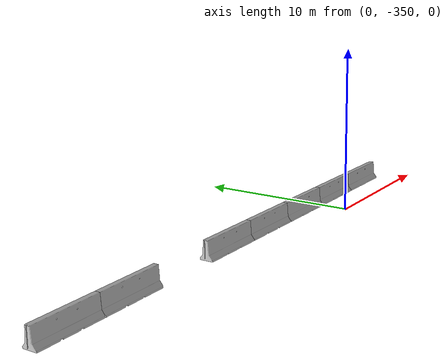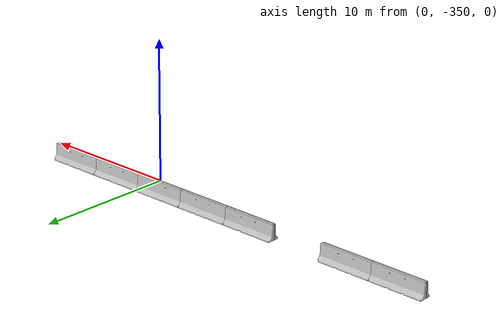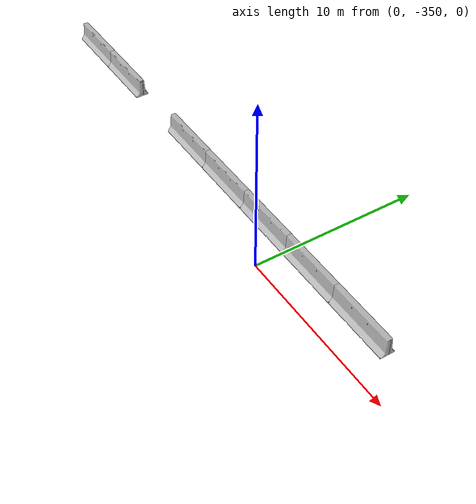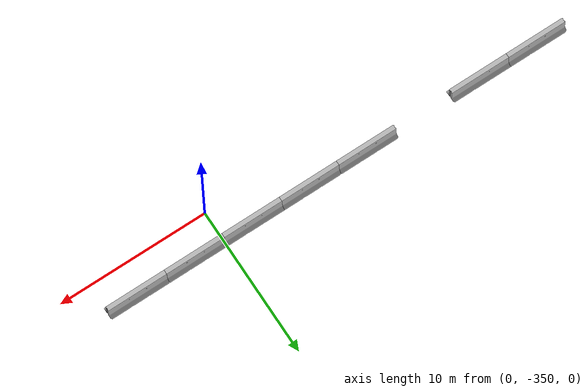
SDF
<sdf version="1.6">
 <world name="default">
  <model name="jersey_barrier_clone">
   <static>1</static>
   <link name="link">
    <visual name="visual">
     <geometry><mesh><uri>model://jersey_barrier/meshes/jersey_barrier.dae</uri></mesh></geometry>
    </visual>
    <collision name="upright">
     <pose>0 0 0.5715 0 -0 0</pose>
     <geometry><box><size>4.06542 0.3063 1.143</size></box></geometry>
    </collision>
    <collision name="base">
     <pose>0 0 0.032258 0 -0 0</pose>
     <geometry><box><size>4.06542 0.8107 0.064516</size></box></geometry>
    </collision>
    <collision name="base2">
     <pose>0 0 0.1 0 -0 0</pose>
     <geometry><box><size>4.06542 0.65 0.1</size></box></geometry>
    </collision>
    <collision name="base3">
     <pose>0 0 0.2 0 -0 0</pose>
     <geometry><box><size>4.06542 0.5 0.1</size></box></geometry>
    </collision>
    <collision name="left-angle">
     <pose>0 -0.224 0.2401 0.9 -0 0</pose>
     <geometry><box><size>4.06542 0.5 0.064516</size></box></geometry>
    </collision>
    <collision name="right-angle">
     <pose>0 0.224 0.2401 -0.9 0 0</pose>
     <geometry><box><size>4.06542 0.5 0.064516</size></box></geometry>
    </collision>
   </link>
   <pose>-22 -348 0 0 -0 0</pose>
  </model>
  <model name="jersey_barrier_clone_clone">
   <static>1</static>
   <link name="link">
    <visual name="visual">
     <geometry><mesh><uri>model://jersey_barrier/meshes/jersey_barrier.dae</uri></mesh></geometry>
    </visual>
    <collision name="upright">
     <pose>0 0 0.5715 0 -0 0</pose>
     <geometry><box><size>4.06542 0.3063 1.143</size></box></geometry>
    </collision>
    <collision name="base">
     <pose>0 0 0.032258 0 -0 0</pose>
     <geometry><box><size>4.06542 0.8107 0.064516</size></box></geometry>
    </collision>
    <collision name="base2">
     <pose>0 0 0.1 0 -0 0</pose>
     <geometry><box><size>4.06542 0.65 0.1</size></box></geometry>
    </collision>
    <collision name="base3">
     <pose>0 0 0.2 0 -0 0</pose>
     <geometry><box><size>4.06542 0.5 0.1</size></box></geometry>
    </collision>
    <collision name="left-angle">
     <pose>0 -0.224 0.2401 0.9 -0 0</pose>
     <geometry><box><size>4.06542 0.5 0.064516</size></box></geometry>
    </collision>
    <collision name="right-angle">
     <pose>0 0.224 0.2401 -0.9 0 0</pose>
     <geometry><box><size>4.06542 0.5 0.064516</size></box></geometry>
    </collision>
   </link>
   <pose>-18 -348 0 0 -0 0</pose>
  </model>
  <model name="jersey_barrier_clone_clone_clone_clone">
   <static>1</static>
   <link name="link">
    <visual name="visual">
     <geometry><mesh><uri>model://jersey_barrier/meshes/jersey_barrier.dae</uri></mesh></geometry>
    </visual>
    <collision name="upright">
     <pose>0 0 0.5715 0 -0 0</pose>
     <geometry><box><size>4.06542 0.3063 1.143</size></box></geometry>
    </collision>
    <collision name="base">
     <pose>0 0 0.032258 0 -0 0</pose>
     <geometry><box><size>4.06542 0.8107 0.064516</size></box></geometry>
    </collision>
    <collision name="base2">
     <pose>0 0 0.1 0 -0 0</pose>
     <geometry><box><size>4.06542 0.65 0.1</size></box></geometry>
    </collision>
    <collision name="base3">
     <pose>0 0 0.2 0 -0 0</pose>
     <geometry><box><size>4.06542 0.5 0.1</size></box></geometry>
    </collision>
    <collision name="left-angle">
     <pose>0 -0.224 0.2401 0.9 -0 0</pose>
     <geometry><box><size>4.06542 0.5 0.064516</size></box></geometry>
    </collision>
    <collision name="right-angle">
     <pose>0 0.224 0.2401 -0.9 0 0</pose>
     <geometry><box><size>4.06542 0.5 0.064516</size></box></geometry>
    </collision>
   </link>
   <pose>-10 -348 0 0 -0 0</pose>
  </model>
  <model name="jersey_barrier_clone_clone_clone_clone_clone">
   <static>1</static>
   <link name="link">
    <visual name="visual">
     <geometry><mesh><uri>model://jersey_barrier/meshes/jersey_barrier.dae</uri></mesh></geometry>
    </visual>
    <collision name="upright">
     <pose>0 0 0.5715 0 -0 0</pose>
     <geometry><box><size>4.06542 0.3063 1.143</size></box></geometry>
    </collision>
    <collision name="base">
     <pose>0 0 0.032258 0 -0 0</pose>
     <geometry><box><size>4.06542 0.8107 0.064516</size></box></geometry>
    </collision>
    <collision name="base2">
     <pose>0 0 0.1 0 -0 0</pose>
     <geometry><box><size>4.06542 0.65 0.1</size></box></geometry>
    </collision>
    <collision name="base3">
     <pose>0 0 0.2 0 -0 0</pose>
     <geometry><box><size>4.06542 0.5 0.1</size></box></geometry>
    </collision>
    <collision name="left-angle">
     <pose>0 -0.224 0.2401 0.9 -0 0</pose>
     <geometry><box><size>4.06542 0.5 0.064516</size></box></geometry>
    </collision>
    <collision name="right-angle">
     <pose>0 0.224 0.2401 -0.9 0 0</pose>
     <geometry><box><size>4.06542 0.5 0.064516</size></box></geometry>
    </collision>
   </link>
   <pose>-6 -348 0 0 -0 0</pose>
  </model>
  <model name="jersey_barrier_clone_clone_clone_clone_clone_clone">
   <static>1</static>
   <link name="link">
    <visual name="visual">
     <geometry><mesh><uri>model://jersey_barrier/meshes/jersey_barrier.dae</uri></mesh></geometry>
    </visual>
    <collision name="upright">
     <pose>0 0 0.5715 0 -0 0</pose>
     <geometry><box><size>4.06542 0.3063 1.143</size></box></geometry>
    </collision>
    <collision name="base">
     <pose>0 0 0.032258 0 -0 0</pose>
     <geometry><box><size>4.06542 0.8107 0.064516</size></box></geometry>
    </collision>
    <collision name="base2">
     <pose>0 0 0.1 0 -0 0</pose>
     <geometry><box><size>4.06542 0.65 0.1</size></box></geometry>
    </collision>
    <collision name="base3">
     <pose>0 0 0.2 0 -0 0</pose>
     <geometry><box><size>4.06542 0.5 0.1</size></box></geometry>
    </collision>
    <collision name="left-angle">
     <pose>0 -0.224 0.2401 0.9 -0 0</pose>
     <geometry><box><size>4.06542 0.5 0.064516</size></box></geometry>
    </collision>
    <collision name="right-angle">
     <pose>0 0.224 0.2401 -0.9 0 0</pose>
     <geometry><box><size>4.06542 0.5 0.064516</size></box></geometry>
    </collision>
   </link>
   <pose>-2 -348 0 0 -0 0</pose>
  </model>
  <model name="jersey_barrier_clone_clone_clone_clone_clone_clone_clone">
   <static>1</static>
   <link name="link">
    <visual name="visual">
     <geometry><mesh><uri>model://jersey_barrier/meshes/jersey_barrier.dae</uri></mesh></geometry>
    </visual>
    <collision name="upright">
     <pose>0 0 0.5715 0 -0 0</pose>
     <geometry><box><size>4.06542 0.3063 1.143</size></box></geometry>
    </collision>
    <collision name="base">
     <pose>0 0 0.032258 0 -0 0</pose>
     <geometry><box><size>4.06542 0.8107 0.064516</size></box></geometry>
    </collision>
    <collision name="base2">
     <pose>0 0 0.1 0 -0 0</pose>
     <geometry><box><size>4.06542 0.65 0.1</size></box></geometry>
    </collision>
    <collision name="base3">
     <pose>0 0 0.2 0 -0 0</pose>
     <geometry><box><size>4.06542 0.5 0.1</size></box></geometry>
    </collision>
    <collision name="left-angle">
     <pose>0 -0.224 0.2401 0.9 -0 0</pose>
     <geometry><box><size>4.06542 0.5 0.064516</size></box></geometry>
    </collision>
    <collision name="right-angle">
     <pose>0 0.224 0.2401 -0.9 0 0</pose>
     <geometry><box><size>4.06542 0.5 0.064516</size></box></geometry>
    </collision>
   </link>
   <pose>6 -348 0 0 -0 0</pose>
  </model>
  <model name="jersey_barrier_clone_clone_clone_clone_clone_clone_clone_clone">
   <static>1</static>
   <link name="link">
    <visual name="visual">
     <geometry><mesh><uri>model://jersey_barrier/meshes/jersey_barrier.dae</uri></mesh></geometry>
    </visual>
    <collision name="upright">
     <pose>0 0 0.5715 0 -0 0</pose>
     <geometry><box><size>4.06542 0.3063 1.143</size></box></geometry>
    </collision>
    <collision name="base">
     <pose>0 0 0.032258 0 -0 0</pose>
     <geometry><box><size>4.06542 0.8107 0.064516</size></box></geometry>
    </collision>
    <collision name="base2">
     <pose>0 0 0.1 0 -0 0</pose>
     <geometry><box><size>4.06542 0.65 0.1</size></box></geometry>
    </collision>
    <collision name="base3">
     <pose>0 0 0.2 0 -0 0</pose>
     <geometry><box><size>4.06542 0.5 0.1</size></box></geometry>
    </collision>
    <collision name="left-angle">
     <pose>0 -0.224 0.2401 0.9 -0 0</pose>
     <geometry><box><size>4.06542 0.5 0.064516</size></box></geometry>
    </collision>
    <collision name="right-angle">
     <pose>0 0.224 0.2401 -0.9 0 0</pose>
     <geometry><box><size>4.06542 0.5 0.064516</size></box></geometry>
    </collision>
   </link>
   <pose>2 -348 0 0 -0 0</pose>
  </model>
 </world>
</sdf>
